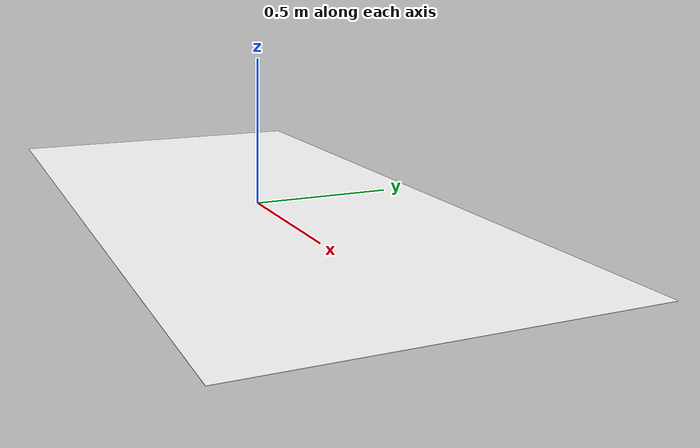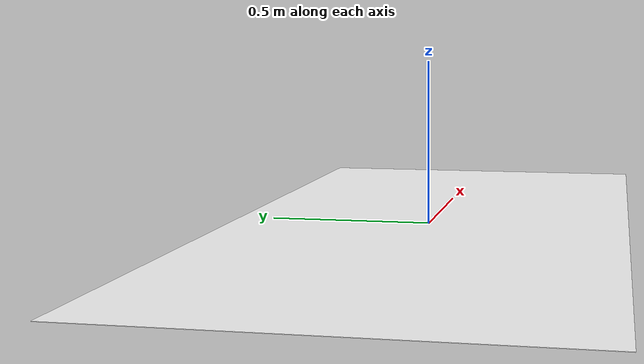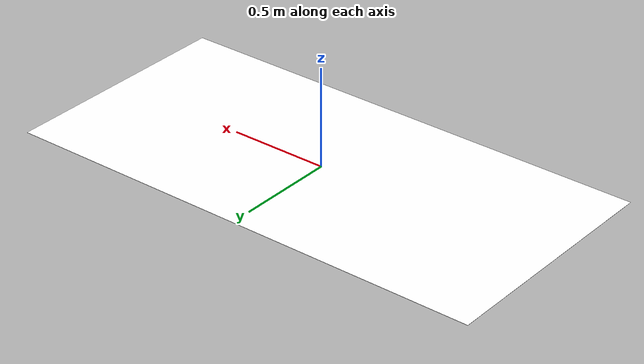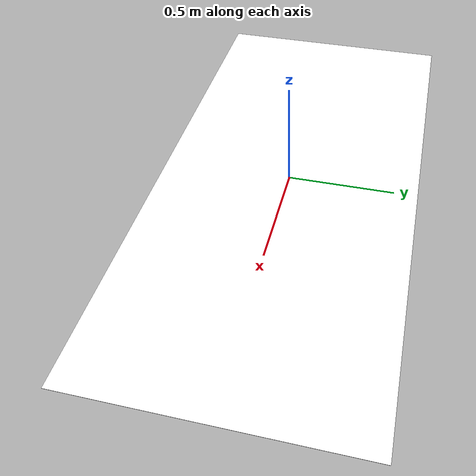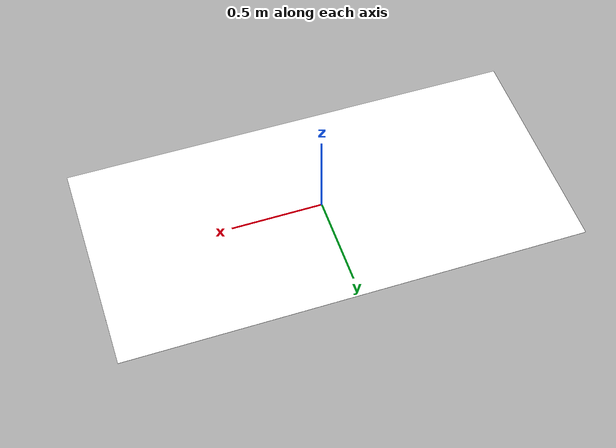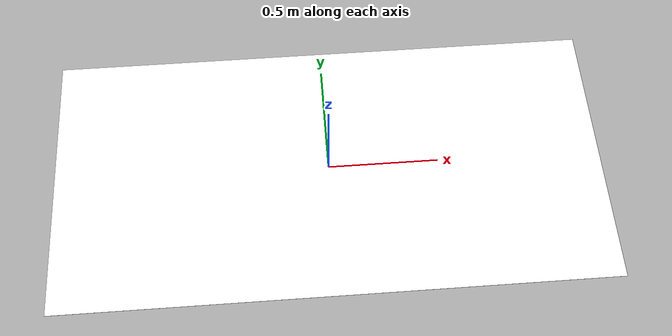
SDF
<?xml version="1.0" encoding="UTF-8"?>
<sdf version='1.9'>
  <model name='arucotag'>
    <static>true</static>
    <pose>0 0 0.001 0 0 0</pose>
    <link name='base'>
      <visual name='base_visual'>
        <geometry>
          <plane>
            <normal>0 0 1</normal>
            <size>2.5 1.22</size>
          </plane>
        </geometry>
        <material>
          <diffuse>1 1 1 1</diffuse>
          <specular>0.4 0.4 0.4 1</specular>
          <pbr>
            <metal>
              <albedo_map>model://arucotag_v3/combined_v3.png</albedo_map>
            </metal>
          </pbr>
        </material>
      </visual>
    </link>
  </model>
</sdf>
